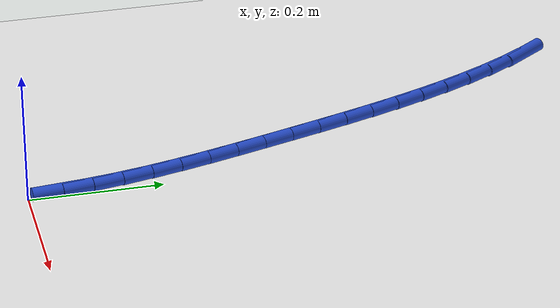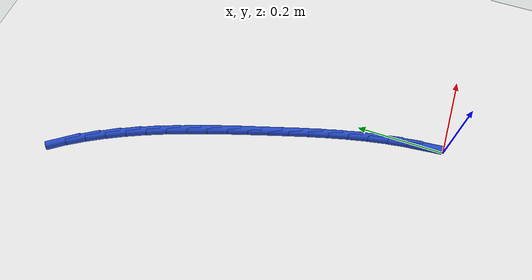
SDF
<sdf version="1.6">
 <world name="default">
  <model name="ground_plane">
   <static>1</static>
   <link name="link">
    <collision name="collision">
     <geometry><plane><normal>0 0 1</normal><size>100 100</size></plane></geometry>
     <surface><friction><ode><mu>100</mu><mu2>50</mu2></ode></friction></surface>
    </collision>
    <visual name="visual">
     <cast_shadows>0</cast_shadows>
     <geometry><plane><normal>0 0 1</normal><size>100 100</size></plane></geometry>
     <material>
      <script><uri>file://media/materials/scripts/gazebo.material</uri><name>Gazebo/WhiteGlow</name></script>
     </material>
    </visual>
   </link>
  </model>
  <model name="line">
   <link name="link_1">
    <pose>-0.0025199337838579176 0.0452538121353279 0.01 0 1.57 -1.4620434421293718</pose>
    <collision name="collision">
     <geometry><cylinder><radius>0.01</radius><length>0.08</length></cylinder></geometry>
    </collision>
    <visual name="visual">
     <material>
      <script><name>Gazebo/Blue</name><uri>file://media/materials/scripts/gazebo.material</uri></script>
     </material>
     <geometry><cylinder><radius>0.01</radius><length>0.08</length></cylinder></geometry>
    </visual>
   </link>
   <link name="link_2">
    <pose>-0.007439263140490313 0.0903093535602655 0.01 0 1.57 -1.4152869893317803</pose>
    <collision name="collision">
     <geometry><cylinder><radius>0.01</radius><length>0.08</length></cylinder></geometry>
    </collision>
    <visual name="visual">
     <material>
      <script><name>Gazebo/Blue</name><uri>file://media/materials/scripts/gazebo.material</uri></script>
     </material>
     <geometry><cylinder><radius>0.01</radius><length>0.08</length></cylinder></geometry>
    </visual>
   </link>
   <link name="link_3">
    <pose>-0.01447917036834315 0.13521383701764486 0.01 0 1.57 -1.375085294124724</pose>
    <collision name="collision">
     <geometry><cylinder><radius>0.01</radius><length>0.08</length></cylinder></geometry>
    </collision>
    <visual name="visual">
     <material>
      <script><name>Gazebo/Blue</name><uri>file://media/materials/scripts/gazebo.material</uri></script>
     </material>
     <geometry><cylinder><radius>0.01</radius><length>0.08</length></cylinder></geometry>
    </visual>
   </link>
   <link name="link_4">
    <pose>-0.02336083776586238 0.18001447525029807 0.01 0 1.57 -1.3414723681343954</pose>
    <collision name="collision">
     <geometry><cylinder><radius>0.01</radius><length>0.08</length></cylinder></geometry>
    </collision>
    <visual name="visual">
     <material>
      <script><name>Gazebo/Blue</name><uri>file://media/materials/scripts/gazebo.material</uri></script>
     </material>
     <geometry><cylinder><radius>0.01</radius><length>0.08</length></cylinder></geometry>
    </visual>
   </link>
   <link name="link_5">
    <pose>-0.03380544763149392 0.22475848100105741 0.01 0 1.57 -1.3143827715020846</pose>
    <collision name="collision">
     <geometry><cylinder><radius>0.01</radius><length>0.08</length></cylinder></geometry>
    </collision>
    <visual name="visual">
     <material>
      <script><name>Gazebo/Blue</name><uri>file://media/materials/scripts/gazebo.material</uri></script>
     </material>
     <geometry><cylinder><radius>0.01</radius><length>0.08</length></cylinder></geometry>
    </visual>
   </link>
   <link name="link_6">
    <pose>-0.04553418226368378 0.2694930670127552 0.01 0 1.57 -1.293696125618497</pose>
    <collision name="collision">
     <geometry><cylinder><radius>0.01</radius><length>0.08</length></cylinder></geometry>
    </collision>
    <visual name="visual">
     <material>
      <script><name>Gazebo/Blue</name><uri>file://media/materials/scripts/gazebo.material</uri></script>
     </material>
     <geometry><cylinder><radius>0.01</radius><length>0.08</length></cylinder></geometry>
    </visual>
   </link>
   <link name="link_7">
    <pose>-0.05826822396087787 0.31426544602822365 0.01 0 1.57 -1.2792717218021814</pose>
    <collision name="collision">
     <geometry><cylinder><radius>0.01</radius><length>0.08</length></cylinder></geometry>
    </collision>
    <visual name="visual">
     <material>
      <script><name>Gazebo/Blue</name><uri>file://media/materials/scripts/gazebo.material</uri></script>
     </material>
     <geometry><cylinder><radius>0.01</radius><length>0.08</length></cylinder></geometry>
    </visual>
   </link>
   <link name="link_8">
    <pose>-0.07172875502152215 0.3591228307902948 0.01 0 1.57 -1.2709730782702546</pose>
    <collision name="collision">
     <geometry><cylinder><radius>0.01</radius><length>0.08</length></cylinder></geometry>
    </collision>
    <visual name="visual">
     <material>
      <script><name>Gazebo/Blue</name><uri>file://media/materials/scripts/gazebo.material</uri></script>
     </material>
     <geometry><cylinder><radius>0.01</radius><length>0.08</length></cylinder></geometry>
    </visual>
   </link>
   <link name="link_9">
    <pose>-0.0856369577440626 0.4041124340418012 0.01 0 1.57 -1.267166131804651</pose>
    <collision name="collision">
     <geometry><cylinder><radius>0.01</radius><length>0.08</length></cylinder></geometry>
    </collision>
    <visual name="visual">
     <material>
      <script><name>Gazebo/Blue</name><uri>file://media/materials/scripts/gazebo.material</uri></script>
     </material>
     <geometry><cylinder><radius>0.01</radius><length>0.08</length></cylinder></geometry>
    </visual>
   </link>
   <link name="link_10">
    <pose>-0.0997791736986746 0.44924933096677455 0.01 0 1.57 -1.260565255090656</pose>
    <collision name="collision">
     <geometry><cylinder><radius>0.01</radius><length>0.08</length></cylinder></geometry>
    </collision>
    <visual name="visual">
     <material>
      <script><name>Gazebo/Blue</name><uri>file://media/materials/scripts/gazebo.material</uri></script>
     </material>
     <geometry><cylinder><radius>0.01</radius><length>0.08</length></cylinder></geometry>
    </visual>
   </link>
   <link name="link_11">
    <pose>-0.11425222481897394 0.4943954630405438 0.01 0 1.57 -1.2489957160301464</pose>
    <collision name="collision">
     <geometry><cylinder><radius>0.01</radius><length>0.08</length></cylinder></geometry>
    </collision>
    <visual name="visual">
     <material>
      <script><name>Gazebo/Blue</name><uri>file://media/materials/scripts/gazebo.material</uri></script>
     </material>
     <geometry><cylinder><radius>0.01</radius><length>0.08</length></cylinder></geometry>
    </visual>
   </link>
   <link name="link_12">
    <pose>-0.12924530864813347 0.5393672106616327 0.01 0 1.57 -1.2323748984446634</pose>
    <collision name="collision">
     <geometry><cylinder><radius>0.01</radius><length>0.08</length></cylinder></geometry>
    </collision>
    <visual name="visual">
     <material>
      <script><name>Gazebo/Blue</name><uri>file://media/materials/scripts/gazebo.material</uri></script>
     </material>
     <geometry><cylinder><radius>0.01</radius><length>0.08</length></cylinder></geometry>
    </visual>
   </link>
   <link name="link_13">
    <pose>-0.14494763812015357 0.5839809466375709 0.01 0 1.57 -1.2105593465376678</pose>
    <collision name="collision">
     <geometry><cylinder><radius>0.01</radius><length>0.08</length></cylinder></geometry>
    </collision>
    <visual name="visual">
     <material>
      <script><name>Gazebo/Blue</name><uri>file://media/materials/scripts/gazebo.material</uri></script>
     </material>
     <geometry><cylinder><radius>0.01</radius><length>0.08</length></cylinder></geometry>
    </visual>
   </link>
   <link name="link_14">
    <pose>-0.16154842616903484 0.6280530437758886 0.01 0 1.57 -1.1833540880014557</pose>
    <collision name="collision">
     <geometry><cylinder><radius>0.01</radius><length>0.08</length></cylinder></geometry>
    </collision>
    <visual name="visual">
     <material>
      <script><name>Gazebo/Blue</name><uri>file://media/materials/scripts/gazebo.material</uri></script>
     </material>
     <geometry><cylinder><radius>0.01</radius><length>0.08</length></cylinder></geometry>
    </visual>
   </link>
   <link name="link_15">
    <pose>-0.17923688572877752 0.6713998748841147 0.01 0 1.57 -1.150526699200057</pose>
    <collision name="collision">
     <geometry><cylinder><radius>0.01</radius><length>0.08</length></cylinder></geometry>
    </collision>
    <visual name="visual">
     <material>
      <script><name>Gazebo/Blue</name><uri>file://media/materials/scripts/gazebo.material</uri></script>
     </material>
     <geometry><cylinder><radius>0.01</radius><length>0.08</length></cylinder></geometry>
    </visual>
   </link>
   <link name="link_16">
    <pose>-0.19820222973338225 0.7138378127697798 0.01 0 1.57 -1.111827931628242</pose>
    <collision name="collision">
     <geometry><cylinder><radius>0.01</radius><length>0.08</length></cylinder></geometry>
    </collision>
    <visual name="visual">
     <material>
      <script><name>Gazebo/Blue</name><uri>file://media/materials/scripts/gazebo.material</uri></script>
     </material>
     <geometry><cylinder><radius>0.01</radius><length>0.08</length></cylinder></geometry>
    </visual>
   </link>
   <link name="link_17">
    <pose>-0.21863367111684948 0.7551832302404131 0.01 0 1.57 -1.0670213642709678</pose>
    <collision name="collision">
     <geometry><cylinder><radius>0.01</radius><length>0.08</length></cylinder></geometry>
    </collision>
    <visual name="visual">
     <material>
      <script><name>Gazebo/Blue</name><uri>file://media/materials/scripts/gazebo.material</uri></script>
     </material>
     <geometry><cylinder><radius>0.01</radius><length>0.08</length></cylinder></geometry>
    </visual>
   </link>
   <link name="link_18">
    <pose>-0.24072042281317957 0.7952525001035449 0.01 0 1.57 -1.0159243109853648</pose>
    <collision name="collision">
     <geometry><cylinder><radius>0.01</radius><length>0.08</length></cylinder></geometry>
    </collision>
    <visual name="visual">
     <material>
      <script><name>Gazebo/Blue</name><uri>file://media/materials/scripts/gazebo.material</uri></script>
     </material>
     <geometry><cylinder><radius>0.01</radius><length>0.08</length></cylinder></geometry>
    </visual>
   </link>
   <link name="link_19">
    <pose>-0.2646516977563731 0.8338619951667048 0.01 0 1.57 -0.9584609441706166</pose>
    <collision name="collision">
     <geometry><cylinder><radius>0.01</radius><length>0.08</length></cylinder></geometry>
    </collision>
    <visual name="visual">
     <material>
      <script><name>Gazebo/Blue</name><uri>file://media/materials/scripts/gazebo.material</uri></script>
     </material>
     <geometry><cylinder><radius>0.01</radius><length>0.08</length></cylinder></geometry>
    </visual>
   </link>
  </model>
 </world>
</sdf>
